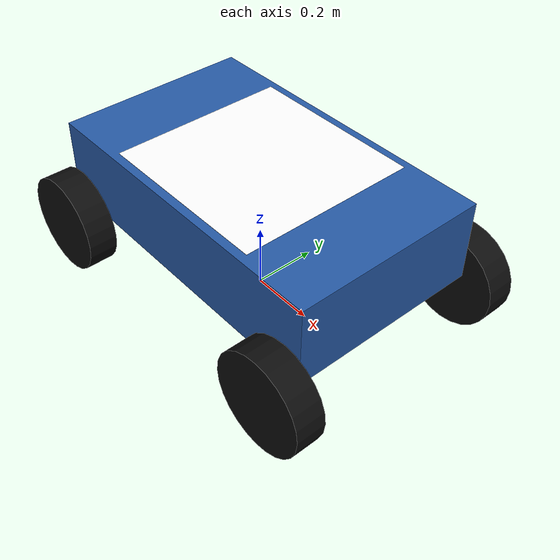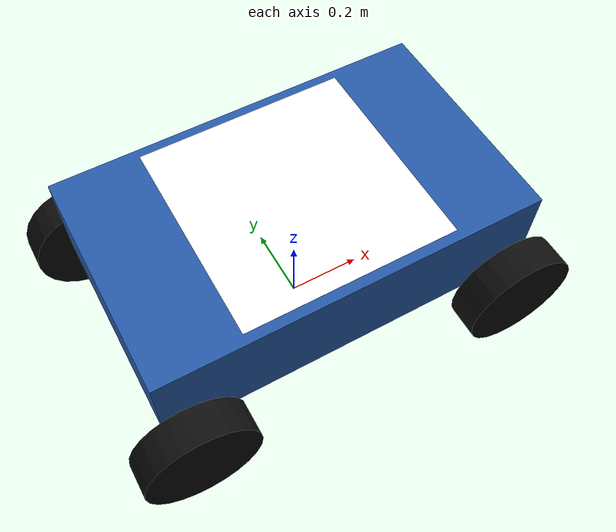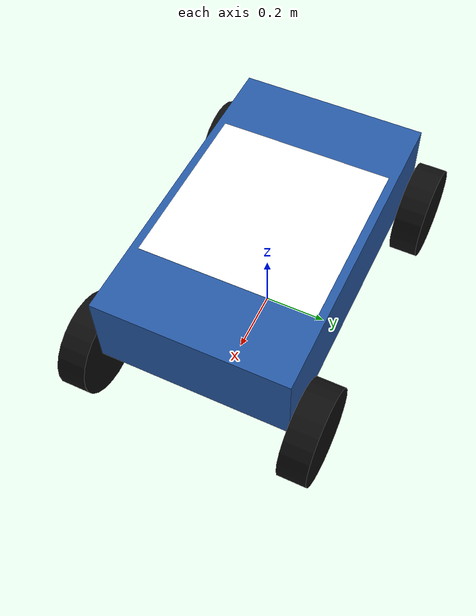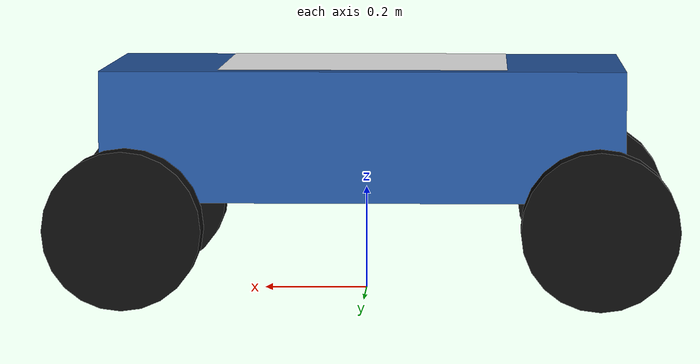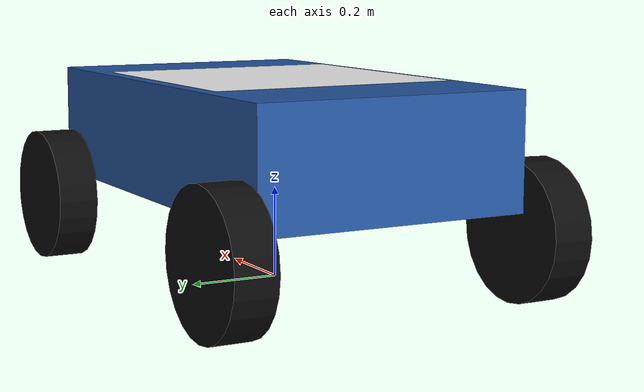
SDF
<?xml version="1.0" ?>
<sdf version="1.9">
  <model name="ackermann_bot">
    <!-- Chassis                                                        -->
    <link name="base_link">
      <pose>0 0 0.32 0 0 0</pose>
      <inertial>
        <mass>20.0</mass>
        <inertia>
          <ixx>0.5208</ixx>
          <iyy>1.7708</iyy>
          <izz>2.0833</izz>
          <ixy>0</ixy>
          <ixz>0</ixz>
          <iyz>0</iyz>
        </inertia>
      </inertial>
      <collision name="chassis_collision">
        <geometry>
          <box>
            <size>1.0 0.6 0.25</size>
          </box>
        </geometry>
      </collision>
      <visual name="chassis_visual">
        <geometry>
          <box>
            <size>1.0 0.6 0.25</size>
          </box>
        </geometry>
        <material>
          <ambient>0.15 0.35 0.65 1</ambient>
          <diffuse>0.15 0.35 0.65 1</diffuse>
          <specular>0.2 0.2 0.2 1</specular>
        </material>
      </visual>
      <visual name="aruco_marker">
        <pose>0 0 0.127 0 0 0</pose>
        <geometry>
          <plane>
            <normal>0 0 1</normal>
            <size>0.55 0.55</size>
          </plane>
        </geometry>
        <material>
          <ambient>1 1 1 1</ambient>
          <diffuse>1 1 1 1</diffuse>
          <specular>0 0 0 1</specular>
          <pbr>
            <metal>
              <albedo_map>model://ackermann_bot/materials/textures/aruco_marker_0.png</albedo_map>
              <metalness>0.0</metalness>
              <roughness>1.0</roughness>
            </metal>
          </pbr>
        </material>
      </visual>
    </link>

    <!-- Front-left wheel (direct drive, no steering - skid/tank turn)  -->
    <link name="front_left_wheel">
      <pose>0.45 0.35 0.15 1.5707963 0 0</pose>
      <inertial>
        <mass>1.5</mass>
        <inertia>
          <ixx>0.00945</ixx>
          <iyy>0.00945</iyy>
          <izz>0.0169</izz>
          <ixy>0</ixy>
          <ixz>0</ixz>
          <iyz>0</iyz>
        </inertia>
      </inertial>
      <collision name="front_left_wheel_collision">
        <geometry>
          <cylinder>
            <radius>0.15</radius>
            <length>0.09</length>
          </cylinder>
        </geometry>
        <surface>
          <friction>
            <ode>
              <mu>1.2</mu>
              <mu2>1.0</mu2>
            </ode>
          </friction>
        </surface>
      </collision>
      <visual name="front_left_wheel_visual">
        <geometry>
          <cylinder>
            <radius>0.15</radius>
            <length>0.09</length>
          </cylinder>
        </geometry>
        <material>
          <ambient>0.05 0.05 0.05 1</ambient>
          <diffuse>0.05 0.05 0.05 1</diffuse>
        </material>
      </visual>
    </link>

    <!-- Front-right wheel (direct drive, no steering - skid/tank turn) -->
    <link name="front_right_wheel">
      <pose>0.45 -0.35 0.15 1.5707963 0 0</pose>
      <inertial>
        <mass>1.5</mass>
        <inertia>
          <ixx>0.00945</ixx>
          <iyy>0.00945</iyy>
          <izz>0.0169</izz>
          <ixy>0</ixy>
          <ixz>0</ixz>
          <iyz>0</iyz>
        </inertia>
      </inertial>
      <collision name="front_right_wheel_collision">
        <geometry>
          <cylinder>
            <radius>0.15</radius>
            <length>0.09</length>
          </cylinder>
        </geometry>
        <surface>
          <friction>
            <ode>
              <mu>1.2</mu>
              <mu2>1.0</mu2>
            </ode>
          </friction>
        </surface>
      </collision>
      <visual name="front_right_wheel_visual">
        <geometry>
          <cylinder>
            <radius>0.15</radius>
            <length>0.09</length>
          </cylinder>
        </geometry>
        <material>
          <ambient>0.05 0.05 0.05 1</ambient>
          <diffuse>0.05 0.05 0.05 1</diffuse>
        </material>
      </visual>
    </link>

    <!-- Rear wheels (driven only, no steering)                         -->
    <link name="rear_left_wheel">
      <pose>-0.45 0.35 0.15 1.5707963 0 0</pose>
      <inertial>
        <mass>1.5</mass>
        <inertia>
          <ixx>0.00945</ixx>
          <iyy>0.00945</iyy>
          <izz>0.0169</izz>
          <ixy>0</ixy>
          <ixz>0</ixz>
          <iyz>0</iyz>
        </inertia>
      </inertial>
      <collision name="rear_left_wheel_collision">
        <geometry>
          <cylinder>
            <radius>0.15</radius>
            <length>0.09</length>
          </cylinder>
        </geometry>
        <surface>
          <friction>
            <ode>
              <mu>1.2</mu>
              <mu2>1.0</mu2>
            </ode>
          </friction>
        </surface>
      </collision>
      <visual name="rear_left_wheel_visual">
        <geometry>
          <cylinder>
            <radius>0.15</radius>
            <length>0.09</length>
          </cylinder>
        </geometry>
        <material>
          <ambient>0.05 0.05 0.05 1</ambient>
          <diffuse>0.05 0.05 0.05 1</diffuse>
        </material>
      </visual>
    </link>

    <link name="rear_right_wheel">
      <pose>-0.45 -0.35 0.15 1.5707963 0 0</pose>
      <inertial>
        <mass>1.5</mass>
        <inertia>
          <ixx>0.00945</ixx>
          <iyy>0.00945</iyy>
          <izz>0.0169</izz>
          <ixy>0</ixy>
          <ixz>0</ixz>
          <iyz>0</iyz>
        </inertia>
      </inertial>
      <collision name="rear_right_wheel_collision">
        <geometry>
          <cylinder>
            <radius>0.15</radius>
            <length>0.09</length>
          </cylinder>
        </geometry>
        <surface>
          <friction>
            <ode>
              <mu>1.2</mu>
              <mu2>1.0</mu2>
            </ode>
          </friction>
        </surface>
      </collision>
      <visual name="rear_right_wheel_visual">
        <geometry>
          <cylinder>
            <radius>0.15</radius>
            <length>0.09</length>
          </cylinder>
        </geometry>
        <material>
          <ambient>0.05 0.05 0.05 1</ambient>
          <diffuse>0.05 0.05 0.05 1</diffuse>
        </material>
      </visual>
    </link>

    <!-- Joints                                                         -->
    <joint name="front_left_wheel_joint" type="revolute">
      <parent>base_link</parent>
      <child>front_left_wheel</child>
      <axis>
        <xyz>0 0 -1</xyz>
        <dynamics>
          <damping>0.1</damping>
        </dynamics>
      </axis>
    </joint>

    <joint name="front_right_wheel_joint" type="revolute">
      <parent>base_link</parent>
      <child>front_right_wheel</child>
      <axis>
        <xyz>0 0 -1</xyz>
        <dynamics>
          <damping>0.1</damping>
        </dynamics>
      </axis>
    </joint>

    <joint name="rear_left_wheel_joint" type="revolute">
      <parent>base_link</parent>
      <child>rear_left_wheel</child>
      <axis>
        <xyz>0 0 -1</xyz>
        <dynamics>
          <damping>0.1</damping>
        </dynamics>
      </axis>
    </joint>

    <joint name="rear_right_wheel_joint" type="revolute">
      <parent>base_link</parent>
      <child>rear_right_wheel</child>
      <axis>
        <xyz>0 0 -1</xyz>
        <dynamics>
          <damping>0.1</damping>
        </dynamics>
      </axis>
    </joint>

    <!-- Skid-steer / tank drive (built-in gz-sim DiffDrive system,     -->
    <!-- no ros2_control needed). All 4 wheels are driven; there is no  -->
    <!-- steering joint - turning comes from the left/right side speed  -->
    <!-- difference, same as a tank. DiffDrive natively supports        -->
    <!-- multiple wheels per side, so both the front and rear wheel on  -->
    <!-- each side are listed and spin together.                        -->
    <plugin
        filename="gz-sim-diff-drive-system"
        name="gz::sim::systems::DiffDrive">
      <left_joint>front_left_wheel_joint</left_joint>
      <left_joint>rear_left_wheel_joint</left_joint>
      <right_joint>front_right_wheel_joint</right_joint>
      <right_joint>rear_right_wheel_joint</right_joint>
      <wheel_separation>0.7</wheel_separation>
      <wheel_radius>0.15</wheel_radius>
      <min_velocity>-2</min_velocity>
      <max_velocity>2</max_velocity>
      <min_acceleration>-3</min_acceleration>
      <max_acceleration>3</max_acceleration>
      <topic>cmd_vel</topic>
    </plugin>

    <!-- Ground-truth pose for checking the ArUco estimate. Validation only:
         nothing in the control loop may subscribe to it. -->
    <plugin
        filename="gz-sim-odometry-publisher-system"
        name="gz::sim::systems::OdometryPublisher">
      <odom_frame>world</odom_frame>
      <robot_base_frame>ugv_ground_truth</robot_base_frame>
      <odom_topic>/ugv/ground_truth</odom_topic>
      <tf_topic>/ugv/ground_truth_tf</tf_topic>
      <odom_publish_frequency>30</odom_publish_frequency>
      <dimensions>3</dimensions>
    </plugin>

    <!-- Publishes joint angles/velocities so they can be bridged to
         sensor_msgs/JointState for RViz / robot_state_publisher -->
    <plugin
        filename="gz-sim-joint-state-publisher-system"
        name="gz::sim::systems::JointStatePublisher">
      <topic>joint_states</topic>
    </plugin>

  </model>
</sdf>
